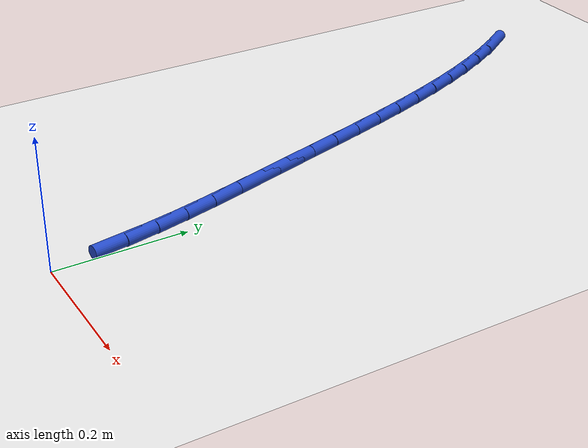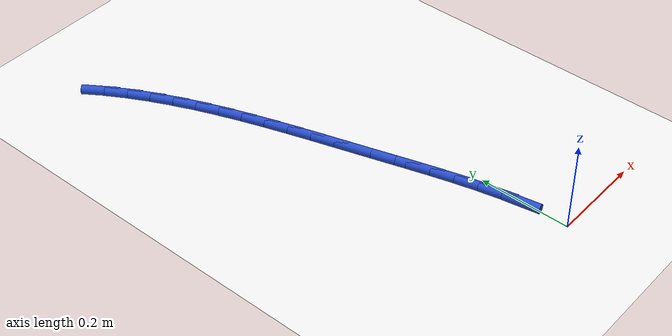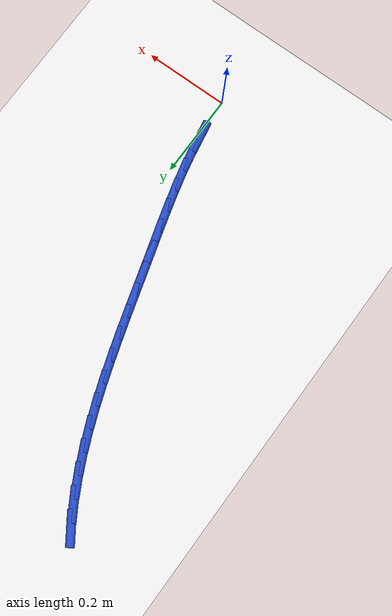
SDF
<sdf version="1.6">
 <world name="default">
  <model name="ground_plane">
   <static>1</static>
   <link name="link">
    <collision name="collision">
     <geometry><plane><normal>0 0 1</normal><size>100 100</size></plane></geometry>
     <surface><friction><ode><mu>100</mu><mu2>50</mu2></ode></friction></surface>
    </collision>
    <visual name="visual">
     <cast_shadows>0</cast_shadows>
     <geometry><plane><normal>0 0 1</normal><size>100 100</size></plane></geometry>
     <material>
      <script><uri>file://media/materials/scripts/gazebo.material</uri><name>Gazebo/WhiteGlow</name></script>
     </material>
    </visual>
   </link>
  </model>
  <model name="line">
   <link name="link_2">
    <pose>-0.009475955514449162 0.0998856889226639 0.01 0 1.57 -1.3974361151422579</pose>
    <collision name="collision">
     <geometry><cylinder><radius>0.01</radius><length>0.08</length></cylinder></geometry>
    </collision>
    <visual name="visual">
     <material>
      <script><name>Gazebo/Blue</name><uri>file://media/materials/scripts/gazebo.material</uri></script>
     </material>
     <geometry><cylinder><radius>0.01</radius><length>0.08</length></cylinder></geometry>
    </visual>
   </link>
   <link name="link_3">
    <pose>-0.018173702694715535 0.1495535952658225 0.01 0 1.57 -1.357137830975622</pose>
    <collision name="collision">
     <geometry><cylinder><radius>0.01</radius><length>0.08</length></cylinder></geometry>
    </collision>
    <visual name="visual">
     <material>
      <script><name>Gazebo/Blue</name><uri>file://media/materials/scripts/gazebo.material</uri></script>
     </material>
     <geometry><cylinder><radius>0.01</radius><length>0.08</length></cylinder></geometry>
    </visual>
   </link>
   <link name="link_4">
    <pose>-0.028926870765237395 0.1991141834292035 0.01 0 1.57 -1.3259563004419235</pose>
    <collision name="collision">
     <geometry><cylinder><radius>0.01</radius><length>0.08</length></cylinder></geometry>
    </collision>
    <visual name="visual">
     <material>
      <script><name>Gazebo/Blue</name><uri>file://media/materials/scripts/gazebo.material</uri></script>
     </material>
     <geometry><cylinder><radius>0.01</radius><length>0.08</length></cylinder></geometry>
    </visual>
   </link>
   <link name="link_5">
    <pose>-0.04129714068218546 0.2486244338370604 0.01 0 1.57 -1.3037090255967154</pose>
    <collision name="collision">
     <geometry><cylinder><radius>0.01</radius><length>0.08</length></cylinder></geometry>
    </collision>
    <visual name="visual">
     <material>
      <script><name>Gazebo/Blue</name><uri>file://media/materials/scripts/gazebo.material</uri></script>
     </material>
     <geometry><cylinder><radius>0.01</radius><length>0.08</length></cylinder></geometry>
    </visual>
   </link>
   <link name="link_6">
    <pose>-0.05484619340173044 0.2981413269136467 0.01 0 1.57 -1.290192399395464</pose>
    <collision name="collision">
     <geometry><cylinder><radius>0.01</radius><length>0.08</length></cylinder></geometry>
    </collision>
    <visual name="visual">
     <material>
      <script><name>Gazebo/Blue</name><uri>file://media/materials/scripts/gazebo.material</uri></script>
     </material>
     <geometry><cylinder><radius>0.01</radius><length>0.08</length></cylinder></geometry>
    </visual>
   </link>
   <link name="link_7">
    <pose>-0.06913570988004306 0.34772184308321574 0.01 0 1.57 -1.2852322684059707</pose>
    <collision name="collision">
     <geometry><cylinder><radius>0.01</radius><length>0.08</length></cylinder></geometry>
    </collision>
    <visual name="visual">
     <material>
      <script><name>Gazebo/Blue</name><uri>file://media/materials/scripts/gazebo.material</uri></script>
     </material>
     <geometry><cylinder><radius>0.01</radius><length>0.08</length></cylinder></geometry>
    </visual>
   </link>
   <link name="link_8">
    <pose>-0.08372737107329403 0.3974229627700211 0.01 0 1.57 -1.2875415427569228</pose>
    <collision name="collision">
     <geometry><cylinder><radius>0.01</radius><length>0.08</length></cylinder></geometry>
    </collision>
    <visual name="visual">
     <material>
      <script><name>Gazebo/Blue</name><uri>file://media/materials/scripts/gazebo.material</uri></script>
     </material>
     <geometry><cylinder><radius>0.01</radius><length>0.08</length></cylinder></geometry>
    </visual>
   </link>
   <link name="link_9">
    <pose>-0.09824111633993482 0.4472844022798528 0.01 0 1.57 -1.288787930718818</pose>
    <collision name="collision">
     <geometry><cylinder><radius>0.01</radius><length>0.08</length></cylinder></geometry>
    </collision>
    <visual name="visual">
     <material>
      <script><name>Gazebo/Blue</name><uri>file://media/materials/scripts/gazebo.material</uri></script>
     </material>
     <geometry><cylinder><radius>0.01</radius><length>0.08</length></cylinder></geometry>
    </visual>
   </link>
   <link name="link_10">
    <pose>-0.11270996417035418 0.4972234672997843 0.01 0 1.57 -1.285398678195648</pose>
    <collision name="collision">
     <geometry><cylinder><radius>0.01</radius><length>0.08</length></cylinder></geometry>
    </collision>
    <visual name="visual">
     <material>
      <script><name>Gazebo/Blue</name><uri>file://media/materials/scripts/gazebo.material</uri></script>
     </material>
     <geometry><cylinder><radius>0.01</radius><length>0.08</length></cylinder></geometry>
    </visual>
   </link>
   <link name="link_11">
    <pose>-0.12734544840702056 0.5471045628181891 0.01 0 1.57 -1.2773435138953182</pose>
    <collision name="collision">
     <geometry><cylinder><radius>0.01</radius><length>0.08</length></cylinder></geometry>
    </collision>
    <visual name="visual">
     <material>
      <script><name>Gazebo/Blue</name><uri>file://media/materials/scripts/gazebo.material</uri></script>
     </material>
     <geometry><cylinder><radius>0.01</radius><length>0.08</length></cylinder></geometry>
    </visual>
   </link>
   <link name="link_12">
    <pose>-0.14235981227871014 0.5967918836060497 0.01 0 1.57 -1.2645705554632696</pose>
    <collision name="collision">
     <geometry><cylinder><radius>0.01</radius><length>0.08</length></cylinder></geometry>
    </collision>
    <visual name="visual">
     <material>
      <script><name>Gazebo/Blue</name><uri>file://media/materials/scripts/gazebo.material</uri></script>
     </material>
     <geometry><cylinder><radius>0.01</radius><length>0.08</length></cylinder></geometry>
    </visual>
   </link>
   <link name="link_13">
    <pose>-0.15796529901419906 0.6461496244343495 0.01 0 1.57 -1.2469965312548537</pose>
    <collision name="collision">
     <geometry><cylinder><radius>0.01</radius><length>0.08</length></cylinder></geometry>
    </collision>
    <visual name="visual">
     <material>
      <script><name>Gazebo/Blue</name><uri>file://media/materials/scripts/gazebo.material</uri></script>
     </material>
     <geometry><cylinder><radius>0.01</radius><length>0.08</length></cylinder></geometry>
    </visual>
   </link>
   <link name="link_14">
    <pose>-0.1743741518422635 0.6950419800740714 0.01 0 1.57 -1.2245142107115385</pose>
    <collision name="collision">
     <geometry><cylinder><radius>0.01</radius><length>0.08</length></cylinder></geometry>
    </collision>
    <visual name="visual">
     <material>
      <script><name>Gazebo/Blue</name><uri>file://media/materials/scripts/gazebo.material</uri></script>
     </material>
     <geometry><cylinder><radius>0.01</radius><length>0.08</length></cylinder></geometry>
    </visual>
   </link>
   <link name="link_15">
    <pose>-0.19179861399167972 0.7433331452961986 0.01 0 1.57 -1.1970035176301614</pose>
    <collision name="collision">
     <geometry><cylinder><radius>0.01</radius><length>0.08</length></cylinder></geometry>
    </collision>
    <visual name="visual">
     <material>
      <script><name>Gazebo/Blue</name><uri>file://media/materials/scripts/gazebo.material</uri></script>
     </material>
     <geometry><cylinder><radius>0.01</radius><length>0.08</length></cylinder></geometry>
    </visual>
   </link>
   <link name="link_16">
    <pose>-0.2104509286912239 0.7908873148717145 0.01 0 1.57 -1.1643471920368038</pose>
    <collision name="collision">
     <geometry><cylinder><radius>0.01</radius><length>0.08</length></cylinder></geometry>
    </collision>
    <visual name="visual">
     <material>
      <script><name>Gazebo/Blue</name><uri>file://media/materials/scripts/gazebo.material</uri></script>
     </material>
     <geometry><cylinder><radius>0.01</radius><length>0.08</length></cylinder></geometry>
    </visual>
   </link>
   <link name="link_17">
    <pose>-0.23054333916967226 0.8375686835716019 0.01 0 1.57 -1.1264518139641115</pose>
    <collision name="collision">
     <geometry><cylinder><radius>0.01</radius><length>0.08</length></cylinder></geometry>
    </collision>
    <visual name="visual">
     <material>
      <script><name>Gazebo/Blue</name><uri>file://media/materials/scripts/gazebo.material</uri></script>
     </material>
     <geometry><cylinder><radius>0.01</radius><length>0.08</length></cylinder></geometry>
    </visual>
   </link>
   <link name="link_18">
    <pose>-0.25228808865580094 0.8832414461668436 0.01 0 1.57 -1.0832746101532338</pose>
    <collision name="collision">
     <geometry><cylinder><radius>0.01</radius><length>0.08</length></cylinder></geometry>
    </collision>
    <visual name="visual">
     <material>
      <script><name>Gazebo/Blue</name><uri>file://media/materials/scripts/gazebo.material</uri></script>
     </material>
     <geometry><cylinder><radius>0.01</radius><length>0.08</length></cylinder></geometry>
    </visual>
   </link>
   <link name="link_19">
    <pose>-0.27589742037838605 0.9277697974284231 0.01 0 1.57 -1.0348555623011204</pose>
    <collision name="collision">
     <geometry><cylinder><radius>0.01</radius><length>0.08</length></cylinder></geometry>
    </collision>
    <visual name="visual">
     <material>
      <script><name>Gazebo/Blue</name><uri>file://media/materials/scripts/gazebo.material</uri></script>
     </material>
     <geometry><cylinder><radius>0.01</radius><length>0.08</length></cylinder></geometry>
    </visual>
   </link>
   <link name="link_20">
    <pose>-0.3015835775662039 0.9710179321273233 0.01 0 1.57 -0.9813527958579571</pose>
    <collision name="collision">
     <geometry><cylinder><radius>0.01</radius><length>0.08</length></cylinder></geometry>
    </collision>
    <visual name="visual">
     <material>
      <script><name>Gazebo/Blue</name><uri>file://media/materials/scripts/gazebo.material</uri></script>
     </material>
     <geometry><cylinder><radius>0.01</radius><length>0.08</length></cylinder></geometry>
    </visual>
   </link>
  </model>
 </world>
</sdf>
